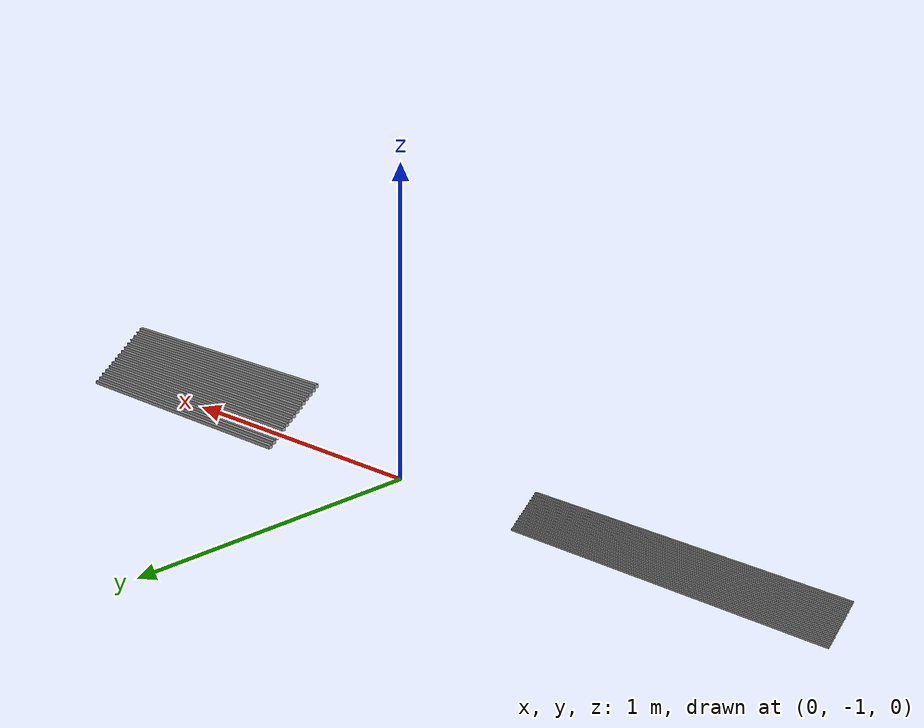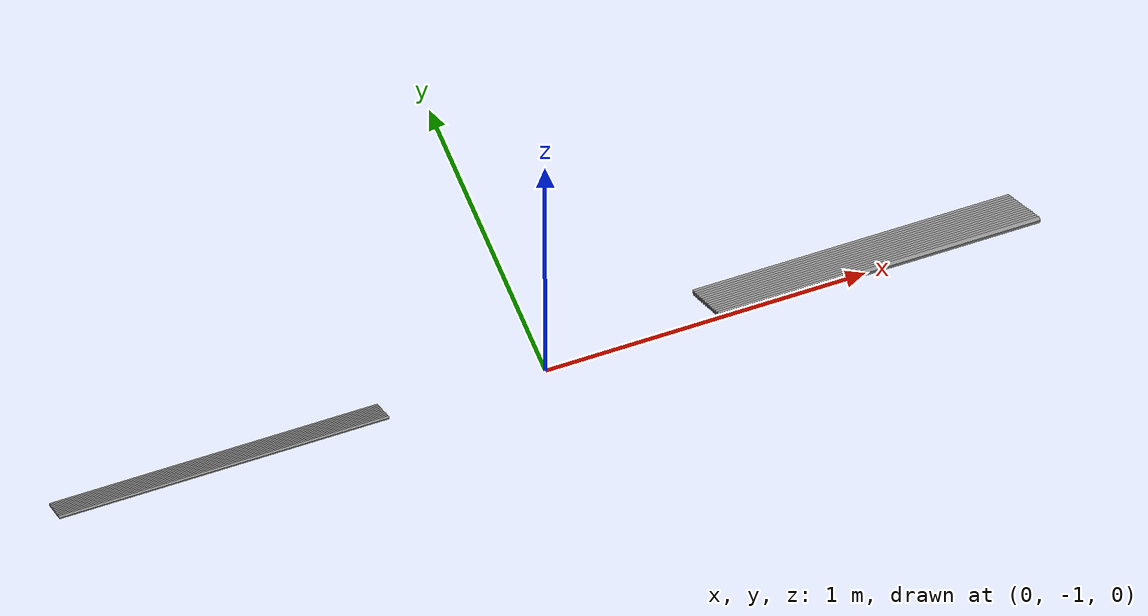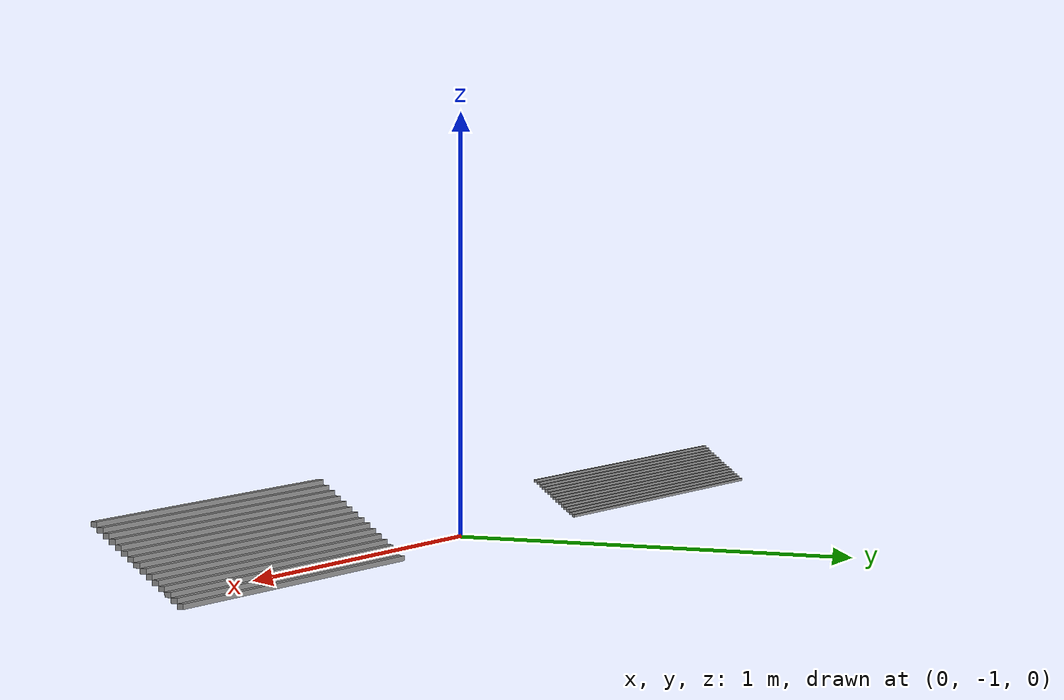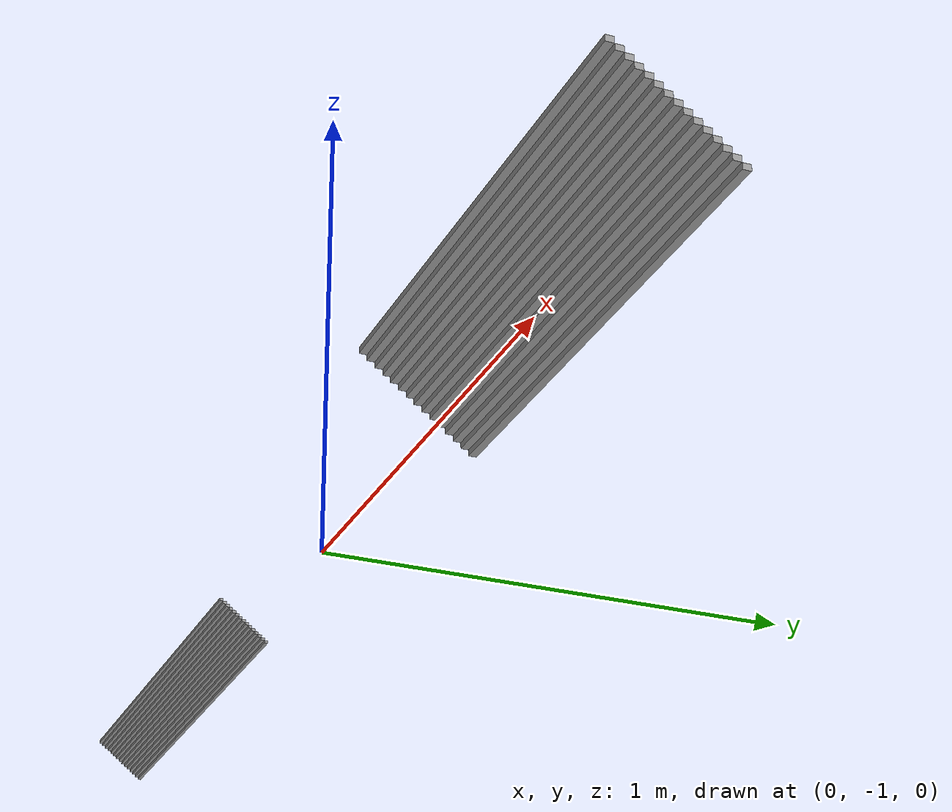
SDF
<?xml version='1.0'?>
<sdf version='1.7'>
  <model name='stairs'>
    <pose>0 -0.55625 0 0 -0 0</pose>
    <link name='Stairs_0'>
      <visual name='Stairs_0_Visual_0'>
        <pose>1 -0.33875 0.005833 0 -0 0</pose>
        <geometry>
          <box>
            <size>1 0.015 0.011667</size>
          </box>
        </geometry>
        <material>
          <script>
            <uri>file://media/materials/scripts/gazebo.material</uri>
            <name>Gazebo/Grey</name>
          </script>
          <ambient>1 1 1 1</ambient>
        </material>
        <meta>
          <layer>0</layer>
        </meta>
      </visual>
      <collision name='Stairs_0_Collision_0'>
        <geometry>
          <box>
            <size>1 0.015 0.011667</size>
          </box>
        </geometry>
        <pose>1 -0.33875 0.005833 0 -0 0</pose>
      </collision>
      <visual name='Stairs_0_Visual_1'>
        <pose>1 -0.35375 0.0175 0 -0 0</pose>
        <geometry>
          <box>
            <size>1 0.015 0.011667</size>
          </box>
        </geometry>
        <material>
          <script>
            <uri>file://media/materials/scripts/gazebo.material</uri>
            <name>Gazebo/Grey</name>
          </script>
          <ambient>1 1 1 1</ambient>
        </material>
        <meta>
          <layer>0</layer>
        </meta>
      </visual>
      <collision name='Stairs_0_Collision_1'>
        <geometry>
          <box>
            <size>1 0.015 0.011667</size>
          </box>
        </geometry>
        <pose>1 -0.35375 0.0175 0 -0 0</pose>
      </collision>
      <visual name='Stairs_0_Visual_2'>
        <pose>1 -0.36875 0.029167 0 -0 0</pose>
        <geometry>
          <box>
            <size>1 0.015 0.011667</size>
          </box>
        </geometry>
        <material>
          <script>
            <uri>file://media/materials/scripts/gazebo.material</uri>
            <name>Gazebo/Grey</name>
          </script>
          <ambient>1 1 1 1</ambient>
        </material>
        <meta>
          <layer>0</layer>
        </meta>
      </visual>
      <collision name='Stairs_0_Collision_2'>
        <geometry>
          <box>
            <size>1 0.015 0.011667</size>
          </box>
        </geometry>
        <pose>1 -0.36875 0.029167 0 -0 0</pose>
      </collision>
      <visual name='Stairs_0_Visual_3'>
        <pose>1 -0.38375 0.040833 0 -0 0</pose>
        <geometry>
          <box>
            <size>1 0.015 0.011667</size>
          </box>
        </geometry>
        <material>
          <script>
            <uri>file://media/materials/scripts/gazebo.material</uri>
            <name>Gazebo/Grey</name>
          </script>
          <ambient>1 1 1 1</ambient>
        </material>
        <meta>
          <layer>0</layer>
        </meta>
      </visual>
      <collision name='Stairs_0_Collision_3'>
        <geometry>
          <box>
            <size>1 0.015 0.011667</size>
          </box>
        </geometry>
        <pose>1 -0.38375 0.040833 0 -0 0</pose>
      </collision>
      <visual name='Stairs_0_Visual_4'>
        <pose>1 -0.39875 0.0525 0 -0 0</pose>
        <geometry>
          <box>
            <size>1 0.015 0.011667</size>
          </box>
        </geometry>
        <material>
          <script>
            <uri>file://media/materials/scripts/gazebo.material</uri>
            <name>Gazebo/Grey</name>
          </script>
          <ambient>1 1 1 1</ambient>
        </material>
        <meta>
          <layer>0</layer>
        </meta>
      </visual>
      <collision name='Stairs_0_Collision_4'>
        <geometry>
          <box>
            <size>1 0.015 0.011667</size>
          </box>
        </geometry>
        <pose>1 -0.39875 0.0525 0 -0 0</pose>
      </collision>
      <visual name='Stairs_0_Visual_5'>
        <pose>1 -0.41375 0.064167 0 -0 0</pose>
        <geometry>
          <box>
            <size>1 0.015 0.011667</size>
          </box>
        </geometry>
        <material>
          <script>
            <uri>file://media/materials/scripts/gazebo.material</uri>
            <name>Gazebo/Grey</name>
          </script>
          <ambient>1 1 1 1</ambient>
        </material>
        <meta>
          <layer>0</layer>
        </meta>
      </visual>
      <collision name='Stairs_0_Collision_5'>
        <geometry>
          <box>
            <size>1 0.015 0.011667</size>
          </box>
        </geometry>
        <pose>1 -0.41375 0.064167 0 -0 0</pose>
      </collision>
      <visual name='Stairs_0_Visual_6'>
        <pose>1 -0.42875 0.075833 0 -0 0</pose>
        <geometry>
          <box>
            <size>1 0.015 0.011667</size>
          </box>
        </geometry>
        <material>
          <script>
            <uri>file://media/materials/scripts/gazebo.material</uri>
            <name>Gazebo/Grey</name>
          </script>
          <ambient>1 1 1 1</ambient>
        </material>
        <meta>
          <layer>0</layer>
        </meta>
      </visual>
      <collision name='Stairs_0_Collision_6'>
        <geometry>
          <box>
            <size>1 0.015 0.011667</size>
          </box>
        </geometry>
        <pose>1 -0.42875 0.075833 0 -0 0</pose>
      </collision>
      <visual name='Stairs_0_Visual_7'>
        <pose>1 -0.44375 0.0875 0 -0 0</pose>
        <geometry>
          <box>
            <size>1 0.015 0.011667</size>
          </box>
        </geometry>
        <material>
          <script>
            <uri>file://media/materials/scripts/gazebo.material</uri>
            <name>Gazebo/Grey</name>
          </script>
          <ambient>1 1 1 1</ambient>
        </material>
        <meta>
          <layer>0</layer>
        </meta>
      </visual>
      <collision name='Stairs_0_Collision_7'>
        <geometry>
          <box>
            <size>1 0.015 0.011667</size>
          </box>
        </geometry>
        <pose>1 -0.44375 0.0875 0 -0 0</pose>
      </collision>
      <visual name='Stairs_0_Visual_8'>
        <pose>1 -0.45875 0.099167 0 -0 0</pose>
        <geometry>
          <box>
            <size>1 0.015 0.011667</size>
          </box>
        </geometry>
        <material>
          <script>
            <uri>file://media/materials/scripts/gazebo.material</uri>
            <name>Gazebo/Grey</name>
          </script>
          <ambient>1 1 1 1</ambient>
        </material>
        <meta>
          <layer>0</layer>
        </meta>
      </visual>
      <collision name='Stairs_0_Collision_8'>
        <geometry>
          <box>
            <size>1 0.015 0.011667</size>
          </box>
        </geometry>
        <pose>1 -0.45875 0.099167 0 -0 0</pose>
      </collision>
      <visual name='Stairs_0_Visual_9'>
        <pose>1 -0.47375 0.110833 0 -0 0</pose>
        <geometry>
          <box>
            <size>1 0.015 0.011667</size>
          </box>
        </geometry>
        <material>
          <script>
            <uri>file://media/materials/scripts/gazebo.material</uri>
            <name>Gazebo/Grey</name>
          </script>
          <ambient>1 1 1 1</ambient>
        </material>
        <meta>
          <layer>0</layer>
        </meta>
      </visual>
      <collision name='Stairs_0_Collision_9'>
        <geometry>
          <box>
            <size>1 0.015 0.011667</size>
          </box>
        </geometry>
        <pose>1 -0.47375 0.110833 0 -0 0</pose>
      </collision>
      <visual name='Stairs_0_Visual_10'>
        <pose>1 -0.48875 0.1225 0 -0 0</pose>
        <geometry>
          <box>
            <size>1 0.015 0.011667</size>
          </box>
        </geometry>
        <material>
          <script>
            <uri>file://media/materials/scripts/gazebo.material</uri>
            <name>Gazebo/Grey</name>
          </script>
          <ambient>1 1 1 1</ambient>
        </material>
        <meta>
          <layer>0</layer>
        </meta>
      </visual>
      <collision name='Stairs_0_Collision_10'>
        <geometry>
          <box>
            <size>1 0.015 0.011667</size>
          </box>
        </geometry>
        <pose>1 -0.48875 0.1225 0 -0 0</pose>
      </collision>
      <visual name='Stairs_0_Visual_11'>
        <pose>1 -0.50375 0.134167 0 -0 0</pose>
        <geometry>
          <box>
            <size>1 0.015 0.011667</size>
          </box>
        </geometry>
        <material>
          <script>
            <uri>file://media/materials/scripts/gazebo.material</uri>
            <name>Gazebo/Grey</name>
          </script>
          <ambient>1 1 1 1</ambient>
        </material>
        <meta>
          <layer>0</layer>
        </meta>
      </visual>
      <collision name='Stairs_0_Collision_11'>
        <geometry>
          <box>
            <size>1 0.015 0.011667</size>
          </box>
        </geometry>
        <pose>1 -0.50375 0.134167 0 -0 0</pose>
      </collision>
      <visual name='Stairs_0_Visual_12'>
        <pose>1 -0.51875 0.145833 0 -0 0</pose>
        <geometry>
          <box>
            <size>1 0.015 0.011667</size>
          </box>
        </geometry>
        <material>
          <script>
            <uri>file://media/materials/scripts/gazebo.material</uri>
            <name>Gazebo/Grey</name>
          </script>
          <ambient>1 1 1 1</ambient>
        </material>
        <meta>
          <layer>0</layer>
        </meta>
      </visual>
      <collision name='Stairs_0_Collision_12'>
        <geometry>
          <box>
            <size>1 0.015 0.011667</size>
          </box>
        </geometry>
        <pose>1 -0.51875 0.145833 0 -0 0</pose>
      </collision>
      <visual name='Stairs_0_Visual_13'>
        <pose>1 -0.53375 0.1575 0 -0 0</pose>
        <geometry>
          <box>
            <size>1 0.015 0.011667</size>
          </box>
        </geometry>
        <material>
          <script>
            <uri>file://media/materials/scripts/gazebo.material</uri>
            <name>Gazebo/Grey</name>
          </script>
          <ambient>1 1 1 1</ambient>
        </material>
        <meta>
          <layer>0</layer>
        </meta>
      </visual>
      <collision name='Stairs_0_Collision_13'>
        <geometry>
          <box>
            <size>1 0.015 0.011667</size>
          </box>
        </geometry>
        <pose>1 -0.53375 0.1575 0 -0 0</pose>
      </collision>
      <visual name='Stairs_0_Visual_14'>
        <pose>1 -0.54875 0.169167 0 -0 0</pose>
        <geometry>
          <box>
            <size>1 0.015 0.011667</size>
          </box>
        </geometry>
        <material>
          <script>
            <uri>file://media/materials/scripts/gazebo.material</uri>
            <name>Gazebo/Grey</name>
          </script>
          <ambient>1 1 1 1</ambient>
        </material>
        <meta>
          <layer>0</layer>
        </meta>
      </visual>
      <collision name='Stairs_0_Collision_14'>
        <geometry>
          <box>
            <size>1 0.015 0.011667</size>
          </box>
        </geometry>
        <pose>1 -0.54875 0.169167 0 -0 0</pose>
      </collision>
    </link>
    <link name='Stairs_1'>
      <visual name='Stairs_1_Visual_0'>
        <pose>-1 -0.392417 0.0029 0 -0 0</pose>
        <geometry>
          <box>
            <size>1 0.007333 0.0058</size>
          </box>
        </geometry>
        <material>
          <script>
            <uri>file://media/materials/scripts/gazebo.material</uri>
            <name>Gazebo/Grey</name>
          </script>
          <ambient>1 1 1 1</ambient>
        </material>
        <meta>
          <layer>0</layer>
        </meta>
      </visual>
      <collision name='Stairs_1_Collision_0'>
        <geometry>
          <box>
            <size>1 0.007333 0.0058</size>
          </box>
        </geometry>
        <pose>-1 -0.392417 0.0029 0 -0 0</pose>
      </collision>
      <visual name='Stairs_1_Visual_1'>
        <pose>-1 -0.39975 0.0087 0 -0 0</pose>
        <geometry>
          <box>
            <size>1 0.007333 0.0058</size>
          </box>
        </geometry>
        <material>
          <script>
            <uri>file://media/materials/scripts/gazebo.material</uri>
            <name>Gazebo/Grey</name>
          </script>
          <ambient>1 1 1 1</ambient>
        </material>
        <meta>
          <layer>0</layer>
        </meta>
      </visual>
      <collision name='Stairs_1_Collision_1'>
        <geometry>
          <box>
            <size>1 0.007333 0.0058</size>
          </box>
        </geometry>
        <pose>-1 -0.39975 0.0087 0 -0 0</pose>
      </collision>
      <visual name='Stairs_1_Visual_2'>
        <pose>-1 -0.407083 0.0145 0 -0 0</pose>
        <geometry>
          <box>
            <size>1 0.007333 0.0058</size>
          </box>
        </geometry>
        <material>
          <script>
            <uri>file://media/materials/scripts/gazebo.material</uri>
            <name>Gazebo/Grey</name>
          </script>
          <ambient>1 1 1 1</ambient>
        </material>
        <meta>
          <layer>0</layer>
        </meta>
      </visual>
      <collision name='Stairs_1_Collision_2'>
        <geometry>
          <box>
            <size>1 0.007333 0.0058</size>
          </box>
        </geometry>
        <pose>-1 -0.407083 0.0145 0 -0 0</pose>
      </collision>
      <visual name='Stairs_1_Visual_3'>
        <pose>-1 -0.414417 0.0203 0 -0 0</pose>
        <geometry>
          <box>
            <size>1 0.007333 0.0058</size>
          </box>
        </geometry>
        <material>
          <script>
            <uri>file://media/materials/scripts/gazebo.material</uri>
            <name>Gazebo/Grey</name>
          </script>
          <ambient>1 1 1 1</ambient>
        </material>
        <meta>
          <layer>0</layer>
        </meta>
      </visual>
      <collision name='Stairs_1_Collision_3'>
        <geometry>
          <box>
            <size>1 0.007333 0.0058</size>
          </box>
        </geometry>
        <pose>-1 -0.414417 0.0203 0 -0 0</pose>
      </collision>
      <visual name='Stairs_1_Visual_4'>
        <pose>-1 -0.42175 0.0261 0 -0 0</pose>
        <geometry>
          <box>
            <size>1 0.007333 0.0058</size>
          </box>
        </geometry>
        <material>
          <script>
            <uri>file://media/materials/scripts/gazebo.material</uri>
            <name>Gazebo/Grey</name>
          </script>
          <ambient>1 1 1 1</ambient>
        </material>
        <meta>
          <layer>0</layer>
        </meta>
      </visual>
      <collision name='Stairs_1_Collision_4'>
        <geometry>
          <box>
            <size>1 0.007333 0.0058</size>
          </box>
        </geometry>
        <pose>-1 -0.42175 0.0261 0 -0 0</pose>
      </collision>
      <visual name='Stairs_1_Visual_5'>
        <pose>-1 -0.429083 0.0319 0 -0 0</pose>
        <geometry>
          <box>
            <size>1 0.007333 0.0058</size>
          </box>
        </geometry>
        <material>
          <script>
            <uri>file://media/materials/scripts/gazebo.material</uri>
            <name>Gazebo/Grey</name>
          </script>
          <ambient>1 1 1 1</ambient>
        </material>
        <meta>
          <layer>0</layer>
        </meta>
      </visual>
      <collision name='Stairs_1_Collision_5'>
        <geometry>
          <box>
            <size>1 0.007333 0.0058</size>
          </box>
        </geometry>
        <pose>-1 -0.429083 0.0319 0 -0 0</pose>
      </collision>
      <visual name='Stairs_1_Visual_6'>
        <pose>-1 -0.436417 0.0377 0 -0 0</pose>
        <geometry>
          <box>
            <size>1 0.007333 0.0058</size>
          </box>
        </geometry>
        <material>
          <script>
            <uri>file://media/materials/scripts/gazebo.material</uri>
            <name>Gazebo/Grey</name>
          </script>
          <ambient>1 1 1 1</ambient>
        </material>
        <meta>
          <layer>0</layer>
        </meta>
      </visual>
      <collision name='Stairs_1_Collision_6'>
        <geometry>
          <box>
            <size>1 0.007333 0.0058</size>
          </box>
        </geometry>
        <pose>-1 -0.436417 0.0377 0 -0 0</pose>
      </collision>
      <visual name='Stairs_1_Visual_7'>
        <pose>-1 -0.44375 0.0435 0 -0 0</pose>
        <geometry>
          <box>
            <size>1 0.007333 0.0058</size>
          </box>
        </geometry>
        <material>
          <script>
            <uri>file://media/materials/scripts/gazebo.material</uri>
            <name>Gazebo/Grey</name>
          </script>
          <ambient>1 1 1 1</ambient>
        </material>
        <meta>
          <layer>0</layer>
        </meta>
      </visual>
      <collision name='Stairs_1_Collision_7'>
        <geometry>
          <box>
            <size>1 0.007333 0.0058</size>
          </box>
        </geometry>
        <pose>-1 -0.44375 0.0435 0 -0 0</pose>
      </collision>
      <visual name='Stairs_1_Visual_8'>
        <pose>-1 -0.451083 0.0493 0 -0 0</pose>
        <geometry>
          <box>
            <size>1 0.007333 0.0058</size>
          </box>
        </geometry>
        <material>
          <script>
            <uri>file://media/materials/scripts/gazebo.material</uri>
            <name>Gazebo/Grey</name>
          </script>
          <ambient>1 1 1 1</ambient>
        </material>
        <meta>
          <layer>0</layer>
        </meta>
      </visual>
      <collision name='Stairs_1_Collision_8'>
        <geometry>
          <box>
            <size>1 0.007333 0.0058</size>
          </box>
        </geometry>
        <pose>-1 -0.451083 0.0493 0 -0 0</pose>
      </collision>
      <visual name='Stairs_1_Visual_9'>
        <pose>-1 -0.458417 0.0551 0 -0 0</pose>
        <geometry>
          <box>
            <size>1 0.007333 0.0058</size>
          </box>
        </geometry>
        <material>
          <script>
            <uri>file://media/materials/scripts/gazebo.material</uri>
            <name>Gazebo/Grey</name>
          </script>
          <ambient>1 1 1 1</ambient>
        </material>
        <meta>
          <layer>0</layer>
        </meta>
      </visual>
      <collision name='Stairs_1_Collision_9'>
        <geometry>
          <box>
            <size>1 0.007333 0.0058</size>
          </box>
        </geometry>
        <pose>-1 -0.458417 0.0551 0 -0 0</pose>
      </collision>
      <visual name='Stairs_1_Visual_10'>
        <pose>-1 -0.46575 0.0609 0 -0 0</pose>
        <geometry>
          <box>
            <size>1 0.007333 0.0058</size>
          </box>
        </geometry>
        <material>
          <script>
            <uri>file://media/materials/scripts/gazebo.material</uri>
            <name>Gazebo/Grey</name>
          </script>
          <ambient>1 1 1 1</ambient>
        </material>
        <meta>
          <layer>0</layer>
        </meta>
      </visual>
      <collision name='Stairs_1_Collision_10'>
        <geometry>
          <box>
            <size>1 0.007333 0.0058</size>
          </box>
        </geometry>
        <pose>-1 -0.46575 0.0609 0 -0 0</pose>
      </collision>
      <visual name='Stairs_1_Visual_11'>
        <pose>-1 -0.473083 0.0667 0 -0 0</pose>
        <geometry>
          <box>
            <size>1 0.007333 0.0058</size>
          </box>
        </geometry>
        <material>
          <script>
            <uri>file://media/materials/scripts/gazebo.material</uri>
            <name>Gazebo/Grey</name>
          </script>
          <ambient>1 1 1 1</ambient>
        </material>
        <meta>
          <layer>0</layer>
        </meta>
      </visual>
      <collision name='Stairs_1_Collision_11'>
        <geometry>
          <box>
            <size>1 0.007333 0.0058</size>
          </box>
        </geometry>
        <pose>-1 -0.473083 0.0667 0 -0 0</pose>
      </collision>
      <visual name='Stairs_1_Visual_12'>
        <pose>-1 -0.480417 0.0725 0 -0 0</pose>
        <geometry>
          <box>
            <size>1 0.007333 0.0058</size>
          </box>
        </geometry>
        <material>
          <script>
            <uri>file://media/materials/scripts/gazebo.material</uri>
            <name>Gazebo/Grey</name>
          </script>
          <ambient>1 1 1 1</ambient>
        </material>
        <meta>
          <layer>0</layer>
        </meta>
      </visual>
      <collision name='Stairs_1_Collision_12'>
        <geometry>
          <box>
            <size>1 0.007333 0.0058</size>
          </box>
        </geometry>
        <pose>-1 -0.480417 0.0725 0 -0 0</pose>
      </collision>
      <visual name='Stairs_1_Visual_13'>
        <pose>-1 -0.48775 0.0783 0 -0 0</pose>
        <geometry>
          <box>
            <size>1 0.007333 0.0058</size>
          </box>
        </geometry>
        <material>
          <script>
            <uri>file://media/materials/scripts/gazebo.material</uri>
            <name>Gazebo/Grey</name>
          </script>
          <ambient>1 1 1 1</ambient>
        </material>
        <meta>
          <layer>0</layer>
        </meta>
      </visual>
      <collision name='Stairs_1_Collision_13'>
        <geometry>
          <box>
            <size>1 0.007333 0.0058</size>
          </box>
        </geometry>
        <pose>-1 -0.48775 0.0783 0 -0 0</pose>
      </collision>
      <visual name='Stairs_1_Visual_14'>
        <pose>-1 -0.495083 0.0841 0 -0 0</pose>
        <geometry>
          <box>
            <size>1 0.007333 0.0058</size>
          </box>
        </geometry>
        <material>
          <script>
            <uri>file://media/materials/scripts/gazebo.material</uri>
            <name>Gazebo/Grey</name>
          </script>
          <ambient>1 1 1 1</ambient>
        </material>
        <meta>
          <layer>0</layer>
        </meta>
      </visual>
      <collision name='Stairs_1_Collision_14'>
        <geometry>
          <box>
            <size>1 0.007333 0.0058</size>
          </box>
        </geometry>
        <pose>-1 -0.495083 0.0841 0 -0 0</pose>
      </collision>
    </link>
    <static>1</static>
  </model>
</sdf>
